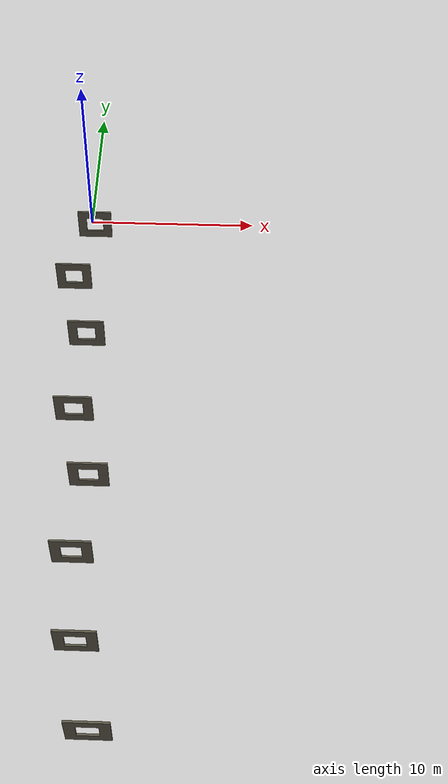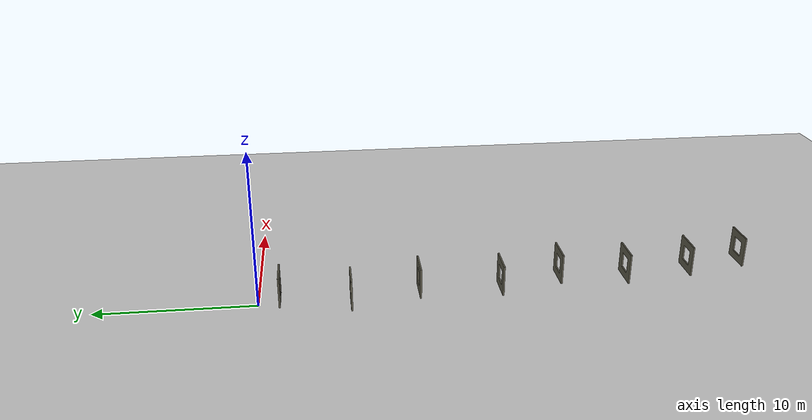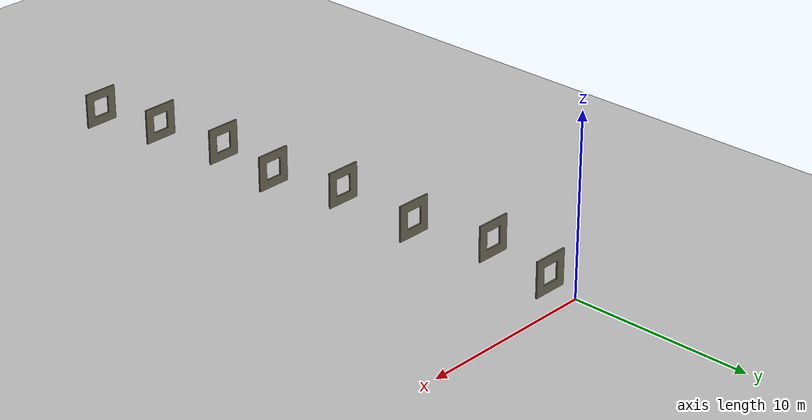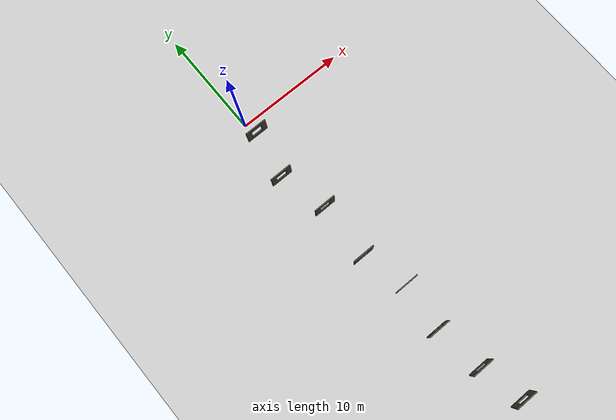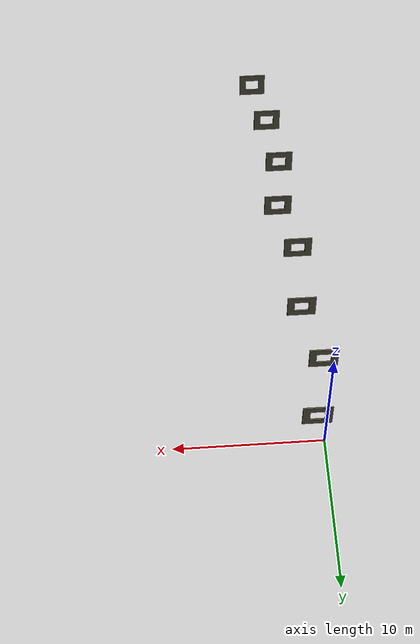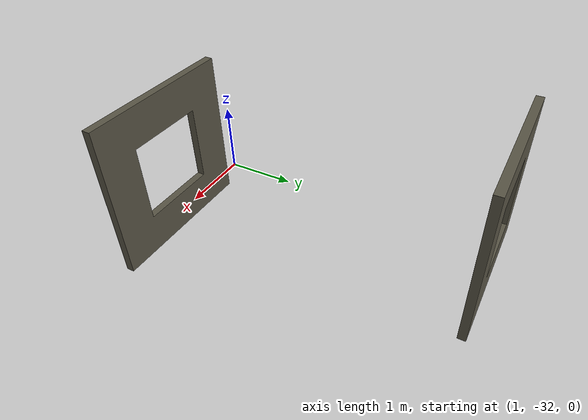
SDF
<sdf version="1.6">
 <world name="default">
  <light name="sun" type="directional">
   <pose>0 0 10 0 -0 0</pose>
   <diffuse>0.8 0.8 0.8 1</diffuse>
   <specular>0.2 0.2 0.2 1</specular>
   <attenuation>
    <range>1000</range>
    <constant>0.9</constant>
    <linear>0.01</linear>
    <quadratic>0.001</quadratic>
   </attenuation>
   <direction>-0.5 0.1 -0.9</direction>
  </light>
  <model name="ground_plane">
   <static>1</static>
   <link name="link">
    <collision name="collision">
     <geometry><plane><normal>0 0 1</normal><size>100 100</size></plane></geometry>
     <surface>
      <contact><collide_bitmask>65535</collide_bitmask></contact>
      <friction><ode><mu>100</mu><mu2>50</mu2></ode></friction>
     </surface>
    </collision>
    <visual name="visual">
     <cast_shadows>0</cast_shadows>
     <geometry><plane><normal>0 0 1</normal><size>100 100</size></plane></geometry>
     <material>
      <script><uri>file://media/materials/scripts/gazebo.material</uri><name>Gazebo/Grey</name></script>
     </material>
    </visual>
   </link>
  </model>
  <gravity>0 0 -9.8</gravity>
  <magnetic_field>6e-06 2.3e-05 -4.2e-05</magnetic_field>
  <atmosphere type="adiabatic"/>
  <physics name="default_physics" default="0" type="ode">
   <max_step_size>0.001</max_step_size>
   <real_time_factor>1</real_time_factor>
   <real_time_update_rate>1000</real_time_update_rate>
  </physics>
  <scene><ambient>0.4 0.4 0.4 1</ambient><background>0.7 0.7 0.7 1</background><shadows>1</shadows></scene>
  <audio><device>default</device></audio>
  <spherical_coordinates>
   <surface_model>EARTH_WGS84</surface_model>
   <latitude_deg>0</latitude_deg>
   <longitude_deg>0</longitude_deg>
   <elevation>0</elevation>
   <heading_deg>0</heading_deg>
  </spherical_coordinates>
  <model name="window">
   <link name="link_1">
    <inertial>
     <mass>1</mass>
     <inertia>
      <ixx>0.166667</ixx>
      <ixy>0</ixy>
      <ixz>0</ixz>
      <iyy>0.166667</iyy>
      <iyz>0</iyz>
      <izz>0.166667</izz>
     </inertia>
    </inertial>
    <gravity>0</gravity>
    <pose>0 0 0.1 0 -0 0</pose>
    <visual name="window_visual"><geometry><mesh><uri>model://window/window.dae</uri></mesh></geometry></visual>
    <collision name="window_collision">
     <geometry><mesh><uri>model://window/window.dae</uri></mesh></geometry>
    </collision>
   </link>
   <pose>2.55385 -31.7415 0 0 -0 0</pose>
  </model>
  <model name="window_0">
   <link name="link_1">
    <inertial>
     <mass>1</mass>
     <inertia>
      <ixx>0.166667</ixx>
      <ixy>0</ixy>
      <ixz>0</ixz>
      <iyy>0.166667</iyy>
      <iyz>0</iyz>
      <izz>0.166667</izz>
     </inertia>
    </inertial>
    <gravity>0</gravity>
    <pose>0 0 0.1 0 -0 0</pose>
    <visual name="window_visual"><geometry><mesh><uri>model://window/window.dae</uri></mesh></geometry></visual>
    <collision name="window_collision">
     <geometry><mesh><uri>model://window/window.dae</uri></mesh></geometry>
    </collision>
   </link>
   <pose>1.66522 -27.8289 0 0 -0 0</pose>
  </model>
  <model name="window_1">
   <link name="link_1">
    <inertial>
     <mass>1</mass>
     <inertia>
      <ixx>0.166667</ixx>
      <ixy>0</ixy>
      <ixz>0</ixz>
      <iyy>0.166667</iyy>
      <iyz>0</iyz>
      <izz>0.166667</izz>
     </inertia>
    </inertial>
    <gravity>0</gravity>
    <pose>0 0 0.1 0 -0 0</pose>
    <visual name="window_visual"><geometry><mesh><uri>model://window/window.dae</uri></mesh></geometry></visual>
    <collision name="window_collision">
     <geometry><mesh><uri>model://window/window.dae</uri></mesh></geometry>
    </collision>
   </link>
   <pose>1.06072 -23.463 0 0 -0 0</pose>
  </model>
  <model name="window_2">
   <link name="link_1">
    <inertial>
     <mass>1</mass>
     <inertia>
      <ixx>0.166667</ixx>
      <ixy>0</ixy>
      <ixz>0</ixz>
      <iyy>0.166667</iyy>
      <iyz>0</iyz>
      <izz>0.166667</izz>
     </inertia>
    </inertial>
    <gravity>0</gravity>
    <pose>0 0 0.1 0 -0 0</pose>
    <visual name="window_visual"><geometry><mesh><uri>model://window/window.dae</uri></mesh></geometry></visual>
    <collision name="window_collision">
     <geometry><mesh><uri>model://window/window.dae</uri></mesh></geometry>
    </collision>
   </link>
   <pose>1.49913 -19.1794 0 0 -0 0</pose>
  </model>
  <model name="window_3">
   <link name="link_1">
    <inertial>
     <mass>1</mass>
     <inertia>
      <ixx>0.166667</ixx>
      <ixy>0</ixy>
      <ixz>0</ixz>
      <iyy>0.166667</iyy>
      <iyz>0</iyz>
      <izz>0.166667</izz>
     </inertia>
    </inertial>
    <gravity>0</gravity>
    <pose>0 0 0.1 0 -0 0</pose>
    <visual name="window_visual"><geometry><mesh><uri>model://window/window.dae</uri></mesh></geometry></visual>
    <collision name="window_collision">
     <geometry><mesh><uri>model://window/window.dae</uri></mesh></geometry>
    </collision>
   </link>
   <pose>0.376954 -15.1654 0 0 -0 0</pose>
  </model>
  <model name="window_4">
   <link name="link_1">
    <inertial>
     <mass>1</mass>
     <inertia>
      <ixx>0.166667</ixx>
      <ixy>0</ixy>
      <ixz>0</ixz>
      <iyy>0.166667</iyy>
      <iyz>0</iyz>
      <izz>0.166667</izz>
     </inertia>
    </inertial>
    <gravity>0</gravity>
    <pose>0 0 0.1 0 -0 0</pose>
    <visual name="window_visual"><geometry><mesh><uri>model://window/window.dae</uri></mesh></geometry></visual>
    <collision name="window_collision">
     <geometry><mesh><uri>model://window/window.dae</uri></mesh></geometry>
    </collision>
   </link>
   <pose>0.594313 -10.0077 0 0 -0 0</pose>
  </model>
  <model name="window_5">
   <link name="link_1">
    <inertial>
     <mass>1</mass>
     <inertia>
      <ixx>0.166667</ixx>
      <ixy>0</ixy>
      <ixz>0</ixz>
      <iyy>0.166667</iyy>
      <iyz>0</iyz>
      <izz>0.166667</izz>
     </inertia>
    </inertial>
    <gravity>0</gravity>
    <pose>0 0 0.1 0 -0 0</pose>
    <visual name="window_visual"><geometry><mesh><uri>model://window/window.dae</uri></mesh></geometry></visual>
    <collision name="window_collision">
     <geometry><mesh><uri>model://window/window.dae</uri></mesh></geometry>
    </collision>
   </link>
   <pose>-0.509187 -5.69227 0 0 -0 0</pose>
  </model>
  <model name="window_6">
   <link name="link_1">
    <inertial>
     <mass>1</mass>
     <inertia>
      <ixx>0.166667</ixx>
      <ixy>0</ixy>
      <ixz>0</ixz>
      <iyy>0.166667</iyy>
      <iyz>0</iyz>
      <izz>0.166667</izz>
     </inertia>
    </inertial>
    <gravity>0</gravity>
    <pose>0 0 0.1 0 -0 0</pose>
    <visual name="window_visual"><geometry><mesh><uri>model://window/window.dae</uri></mesh></geometry></visual>
    <collision name="window_collision">
     <geometry><mesh><uri>model://window/window.dae</uri></mesh></geometry>
    </collision>
   </link>
   <pose>0.357259 -1.31714 0 0 -0 0</pose>
  </model>
 </world>
</sdf>
